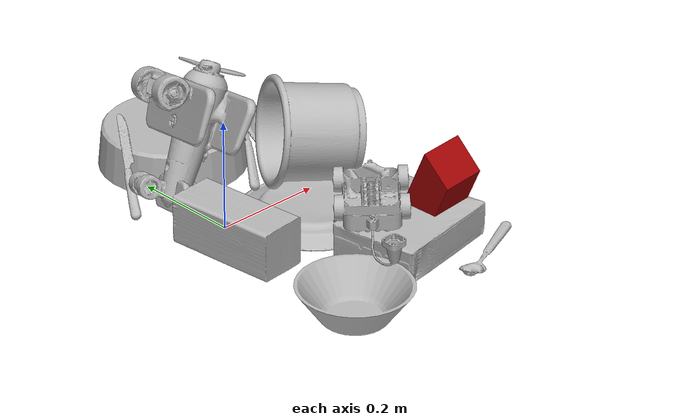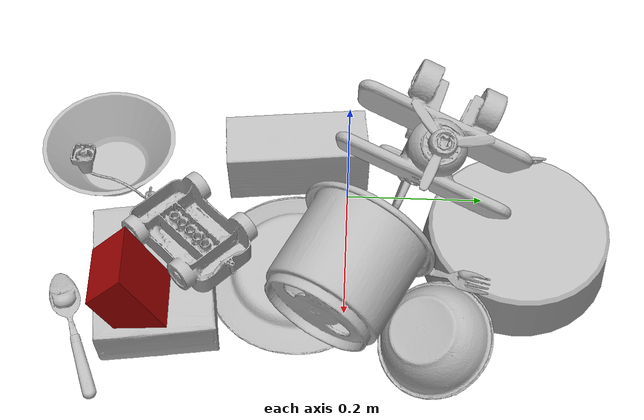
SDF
<sdf version="1.4">
  <world name="default">
    <light name="light1" type="point">
      <pose>0 0 1 0 0 0</pose>
      <diffuse>3 3 3 1</diffuse>
      <specular>3 3 3 1</specular>
    </light>
    <light name="light2" type="point">
      <pose>0 0.5 2 0 0 0</pose>
      <diffuse>1 1 1 1</diffuse>
      <specular>1 1 1 1</specular>
    </light>
    <light name="light3" type="point">
      <pose>0 0.5 2 0 0 0</pose>
      <diffuse>3 3 3 1</diffuse>
      <specular>3 3 3 1</specular>
    </light>
    <scene>
      <ambient>0.7 0.7 0.7</ambient>
    </scene>
    <model name="plate1">
      <link name="link_plate1">
        <collision name="default">
          <geometry>
            <mesh>
              <uri>model://plate/collision_meshes/collision.obj</uri>
              <scale>1.0 1.0 1.0</scale>
            </mesh>
          </geometry>
          <surface>
            <friction>
              <ode>
                <mu>0.5</mu>
                <mu2>0.5</mu2>
              </ode>
            </friction>
          <contact>
        <ode>
            <max_vel>0</max_vel>
            <min_depth>0.0001</min_depth>
            <kp>1e8</kp>
        </ode>
    </contact></surface>
        </collision>
        <visual name="default">
          <geometry>
            <mesh>
              <uri>model://plate/visual_meshes/visual.dae</uri>
              <scale>1.0 1.0 1.0</scale>
            </mesh>
          </geometry>
        </visual>
        <inertial>
          <mass>0.18013060092926025</mass>
          <pose>-0.0006044624606147408 0.0002782579977065325 -0.0010561981471255422 0.0022187543261248163 -0.003225499970721242 0.452618951787785</pose>
          <inertia>
            <ixx>0.00084265455</ixx>
            <iyy>0.000834595</iyy>
            <izz>0.0016481068</izz>
            <ixy>0</ixy>
            <ixz>0</ixz>
            <iyz>0</iyz>
          </inertia>
        </inertial>
      </link>
      <pose>0.1377573162317276 -0.0672813132405281 0.013932924717664719 3.1258097369568927 -0.007449469774596256 -2.115718948793599</pose>
    </model>
    <model name="plate2">
      <link name="link_plate2">
        <collision name="default">
          <geometry>
            <mesh>
              <uri>model://pan_tefal/collision_meshes/collision.obj</uri>
              <scale>1.0 1.0 1.0</scale>
            </mesh>
          </geometry>
          <surface>
            <friction>
              <ode>
                <mu>0.5</mu>
                <mu2>0.5</mu2>
              </ode>
            </friction>
          <contact>
        <ode>
            <max_vel>0</max_vel>
            <min_depth>0.0001</min_depth>
            <kp>1e8</kp>
        </ode>
    </contact></surface>
        </collision>
        <visual name="default">
          <geometry>
            <mesh>
              <uri>model://pan_tefal/visual_meshes/visual.dae</uri>
              <scale>1.0 1.0 1.0</scale>
            </mesh>
          </geometry>
        </visual>
        <inertial>
          <mass>1.1554980278015137</mass>
          <pose>-0.00018001958960667253 3.279018710600212e-05 -0.008514934219419956 0.0008190268412404128 -0.0003301434555644904 -0.33185316474518306</pose>
          <inertia>
            <ixx>0.007976347</ixx>
            <iyy>0.008027771</iyy>
            <izz>0.014682918</izz>
            <ixy>0</ixy>
            <ixz>0</ixz>
            <iyz>0</iyz>
          </inertia>
        </inertial>
      </link>
      <pose>0.09440792351961136 0.23896825313568115 0.03782225772738457 3.1415921398428477 -2.3816474240000096e-06 0.7791945965873567</pose>
    </model>
    <model name="bowl1">
      <link name="link_bowl1">
        <collision name="default">
          <geometry>
            <mesh>
              <uri>model://bowl/collision_meshes/collision.obj</uri>
              <scale>1.0 1.0 1.0</scale>
            </mesh>
          </geometry>
          <surface>
            <friction>
              <ode>
                <mu>0.5</mu>
                <mu2>0.5</mu2>
              </ode>
            </friction>
          <contact>
        <ode>
            <max_vel>0</max_vel>
            <min_depth>0.0001</min_depth>
            <kp>1e8</kp>
        </ode>
    </contact></surface>
        </collision>
        <visual name="default">
          <geometry>
            <mesh>
              <uri>model://bowl/visual_meshes/visual.dae</uri>
              <scale>1.0 1.0 1.0</scale>
            </mesh>
          </geometry>
        </visual>
        <inertial>
          <mass>0.08154366910457611</mass>
          <pose>0.0002044497523456812 -0.0010302083101123571 -0.0008042664267122746 -0.01576409235239578 0.014546819263349199 0.7140418673414882</pose>
          <inertia>
            <ixx>0.00018731231</ixx>
            <iyy>0.000183127</iyy>
            <izz>0.00031512365</izz>
            <ixy>0</ixy>
            <ixz>0</ixz>
            <iyz>0</iyz>
          </inertia>
        </inertial>
      </link>
      <pose>0.2615250051021576 0.11196448653936386 0.05923803895711899 -2.895696797517412 0.4007398164637057 -0.47011835792922246</pose>
    </model>
    <model name="bowl2">
      <link name="link_bowl2">
        <collision name="default">
          <geometry>
            <mesh>
              <uri>model://bowl_a/collision_meshes/collision.obj</uri>
              <scale>1.0 1.0 1.0</scale>
            </mesh>
          </geometry>
          <surface>
            <friction>
              <ode>
                <mu>0.5</mu>
                <mu2>0.5</mu2>
              </ode>
            </friction>
          <contact>
        <ode>
            <max_vel>0</max_vel>
            <min_depth>0.0001</min_depth>
            <kp>1e8</kp>
        </ode>
    </contact></surface>
        </collision>
        <visual name="default">
          <geometry>
            <mesh>
              <uri>model://bowl_a/visual_meshes/visual.dae</uri>
              <scale>1.0 1.0 1.0</scale>
            </mesh>
          </geometry>
        </visual>
        <inertial>
          <mass>0.4363987147808075</mass>
          <pose>0.0002786752884276211 4.73113359475974e-05 -0.0013765294570475817 -0.0009805318297205425 -0.0010938254473046036 -0.19123908587825994</pose>
          <inertia>
            <ixx>0.0012424473</ixx>
            <iyy>0.001250075</iyy>
            <izz>0.0022097398</izz>
            <ixy>0</ixy>
            <ixz>0</ixz>
            <iyz>0</iyz>
          </inertia>
        </inertial>
      </link>
      <pose>-0.04293172433972359 -0.35472720861434937 0.030382966622710228 -2.0422733386278544e-07 4.6154043487826195e-06 1.3660475537505519</pose>
    </model>
    <model name="silverware1">
      <link name="link_silverware1">
        <collision name="default">
          <geometry>
            <mesh>
              <uri>model://spoon/collision_meshes/collision.obj</uri>
              <scale>1.0 1.0 1.0</scale>
            </mesh>
          </geometry>
          <surface>
            <friction>
              <ode>
                <mu>0.5</mu>
                <mu2>0.5</mu2>
              </ode>
            </friction>
          <contact>
        <ode>
            <max_vel>0</max_vel>
            <min_depth>0.0001</min_depth>
            <kp>1e8</kp>
        </ode>
    </contact></surface>
        </collision>
        <visual name="default">
          <geometry>
            <mesh>
              <uri>model://spoon/visual_meshes/visual.dae</uri>
              <scale>1.0 1.0 1.0</scale>
            </mesh>
          </geometry>
        </visual>
        <inertial>
          <mass>0.034700214862823486</mass>
          <pose>-0.00552632100880146 -0.0016034168656915426 -0.0007271654903888702 0.03521477925438783 -0.03906582568380071 0.006150611591128785</pose>
          <inertia>
            <ixx>1.9300821e-06</ixx>
            <iyy>0.00013203312</iyy>
            <izz>0.00013298499</izz>
            <ixy>0</ixy>
            <ixz>0</ixz>
            <iyz>0</iyz>
          </inertia>
        </inertial>
      </link>
      <pose>0.253863126039505 -0.36797454953193665 0.008385265246033669 0.006731860611256009 0.026892982709804263 -2.7591480546616567</pose>
    </model>
    <model name="box1">
      <link name="link_box1">
        <collision name="default">
          <geometry>
            <mesh>
              <uri>model://cracker_box/collision_meshes/collision.obj</uri>
              <scale>1.0 1.0 1.0</scale>
            </mesh>
          </geometry>
          <surface>
            <friction>
              <ode>
                <mu>0.5</mu>
                <mu2>0.5</mu2>
              </ode>
            </friction>
          <contact>
        <ode>
            <max_vel>0</max_vel>
            <min_depth>0.0001</min_depth>
            <kp>1e8</kp>
        </ode>
    </contact></surface>
        </collision>
        <visual name="default">
          <geometry>
            <mesh>
              <uri>model://cracker_box/visual_meshes/visual.dae</uri>
              <scale>1.0 1.0 1.0</scale>
            </mesh>
          </geometry>
        </visual>
        <inertial>
          <mass>1.831273078918457</mass>
          <pose>0.000946414191275835 0.00025434247800149024 -0.0017029533628374338 -0.0003162074786093215 -0.01110648680647863 0.0025467950006863548</pose>
          <inertia>
            <ixx>0.0046579414</ixx>
            <iyy>0.0076911766</iyy>
            <izz>0.010976015</izz>
            <ixy>0</ixy>
            <ixz>0</ixz>
            <iyz>0</iyz>
          </inertia>
        </inertial>
      </link>
      <pose>0.1763046681880951 -0.26137834787368774 0.03553223982453346 3.137151836773405 -0.016554766398315667 0.15551177598453955</pose>
    </model>
    <model name="box2">
      <link name="link_box2">
        <collision name="default">
          <geometry>
            <mesh>
              <uri>model://wood_block/collision_meshes/collision.obj</uri>
              <scale>1.0 1.0 1.0</scale>
            </mesh>
          </geometry>
          <surface>
            <friction>
              <ode>
                <mu>0.5</mu>
                <mu2>0.5</mu2>
              </ode>
            </friction>
          <contact>
        <ode>
            <max_vel>0</max_vel>
            <min_depth>0.0001</min_depth>
            <kp>1e8</kp>
        </ode>
    </contact></surface>
        </collision>
        <visual name="default">
          <geometry>
            <mesh>
              <uri>model://wood_block/visual_meshes/visual.dae</uri>
              <scale>1.0 1.0 1.0</scale>
            </mesh>
          </geometry>
        </visual>
        <inertial>
          <mass>1.0038666725158691</mass>
          <pose>-5.813315510749817e-06 -0.000570809468626976 0.0002640858292579651 -0.05221020962952386 -0.005192696059900718 -0.006861377701075274</pose>
          <inertia>
            <ixx>0.0013433257</ixx>
            <iyy>0.0042435657</iyy>
            <izz>0.0042276927</izz>
            <ixy>0</ixy>
            <ixz>0</ixz>
            <iyz>0</iyz>
          </inertia>
        </inertial>
      </link>
      <pose>-0.042445022612810135 -0.07546605169773102 0.045591577887535095 3.1414317692062985 -0.005752664669625989 1.670034749157024</pose>
    </model>
    <model name="cup1">
      <link name="link_cup1">
        <collision name="default">
          <geometry>
            <mesh>
              <uri>model://i_cups/collision_meshes/collision.obj</uri>
              <scale>2.0 2.0 2.0</scale>
            </mesh>
          </geometry>
          <surface>
            <friction>
              <ode>
                <mu>0.5</mu>
                <mu2>0.5</mu2>
              </ode>
            </friction>
          <contact>
        <ode>
            <max_vel>0</max_vel>
            <min_depth>0.0001</min_depth>
            <kp>1e8</kp>
        </ode>
    </contact></surface>
        </collision>
        <visual name="default">
          <geometry>
            <mesh>
              <uri>model://i_cups/visual_meshes/visual.dae</uri>
              <scale>2.0 2.0 2.0</scale>
            </mesh>
          </geometry>
        </visual>
        <inertial>
          <mass>0.6038269996643066</mass>
          <pose>0.00022479970357380807 0.0003359453985467553 -0.001715799910016358 -0.02898255198870416 -0.03987340808103542 -0.3459203892901821</pose>
          <inertia>
            <ixx>0.0033440301</ixx>
            <iyy>0.003373493</iyy>
            <izz>0.0037374943</izz>
            <ixy>0</ixy>
            <ixz>0</ixz>
            <iyz>0</iyz>
          </inertia>
        </inertial>
      </link>
      <pose>0.20041263103485107 -0.0024191797710955143 0.11153033375740051 -1.4314463579007655 0.36058394011361494 1.1161632582233418</pose>
    </model>
    <model name="silverware2">
      <link name="link_silverware2">
        <collision name="default">
          <geometry>
            <mesh>
              <uri>model://knife/collision_meshes/collision.obj</uri>
              <scale>1.0 1.0 1.0</scale>
            </mesh>
          </geometry>
          <surface>
            <friction>
              <ode>
                <mu>0.5</mu>
                <mu2>0.5</mu2>
              </ode>
            </friction>
          <contact>
        <ode>
            <max_vel>0</max_vel>
            <min_depth>0.0001</min_depth>
            <kp>1e8</kp>
        </ode>
    </contact></surface>
        </collision>
        <visual name="default">
          <geometry>
            <mesh>
              <uri>model://knife/visual_meshes/visual.dae</uri>
              <scale>1.0 1.0 1.0</scale>
            </mesh>
          </geometry>
        </visual>
        <inertial>
          <mass>0.01351180113852024</mass>
          <pose>-0.023785246536135674 0.0015275131445378065 5.062015407020226e-05 0.073058244240525 0.017248418380522417 -0.007409818685807072</pose>
          <inertia>
            <ixx>3.8351965e-07</ixx>
            <iyy>5.1910156e-05</iyy>
            <izz>5.2033673e-05</izz>
            <ixy>0</ixy>
            <ixz>0</ixz>
            <iyz>0</iyz>
          </inertia>
        </inertial>
      </link>
      <pose>-0.04300197958946228 0.19647803902626038 0.05774923413991928 -0.43799093344774587 -0.52382685174451 1.005048076978569</pose>
    </model>
    <model name="silverware3">
      <link name="link_silverware3">
        <collision name="default">
          <geometry>
            <mesh>
              <uri>model://fork/collision_meshes/collision.obj</uri>
              <scale>1.0 1.0 1.0</scale>
            </mesh>
          </geometry>
          <surface>
            <friction>
              <ode>
                <mu>0.5</mu>
                <mu2>0.5</mu2>
              </ode>
            </friction>
          <contact>
        <ode>
            <max_vel>0</max_vel>
            <min_depth>0.0001</min_depth>
            <kp>1e8</kp>
        </ode>
    </contact></surface>
        </collision>
        <visual name="default">
          <geometry>
            <mesh>
              <uri>model://fork/visual_meshes/visual.dae</uri>
              <scale>1.0 1.0 1.0</scale>
            </mesh>
          </geometry>
        </visual>
        <inertial>
          <mass>0.030749449506402016</mass>
          <pose>-0.029570044949650764 0.0004658822435885668 0.00032188615296036005 -0.013551266353778695 -0.010977839115777554 0.014453902178384312</pose>
          <inertia>
            <ixx>1.0779423e-06</ixx>
            <iyy>8.0277954e-05</iyy>
            <izz>8.076011e-05</izz>
            <ixy>0</ixy>
            <ixz>0</ixz>
            <iyz>0</iyz>
          </inertia>
        </inertial>
      </link>
      <pose>0.16261601448059082 0.11889137327671051 0.056231990456581116 0.6899068822837929 -0.46401210805689486 0.9733933259470611</pose>
    </model>
    <model name="toy1">
      <link name="link_toy1">
        <collision name="default">
          <geometry>
            <mesh>
              <uri>model://e_toy_airplane/collision_meshes/collision.obj</uri>
              <scale>1.0 1.0 1.0</scale>
            </mesh>
          </geometry>
          <surface>
            <friction>
              <ode>
                <mu>0.5</mu>
                <mu2>0.5</mu2>
              </ode>
            </friction>
          <contact>
        <ode>
            <max_vel>0</max_vel>
            <min_depth>0.0001</min_depth>
            <kp>1e8</kp>
        </ode>
    </contact></surface>
        </collision>
        <visual name="default">
          <geometry>
            <mesh>
              <uri>model://e_toy_airplane/visual_meshes/visual.dae</uri>
              <scale>1.0 1.0 1.0</scale>
            </mesh>
          </geometry>
        </visual>
        <inertial>
          <mass>0.01770107075572014</mass>
          <pose>0.00011740486661437899 -2.248296732432209e-05 -0.011187206022441387 0.005518513464699853 0.009228302242376646 0.15041570361631973</pose>
          <inertia>
            <ixx>5.4025695e-06</ixx>
            <iyy>5.3473045e-06</iyy>
            <izz>1.6236847e-06</izz>
            <ixy>0</ixy>
            <ixz>0</ixz>
            <iyz>0</iyz>
          </inertia>
        </inertial>
      </link>
      <pose>0.019642598927021027 0.028410617262125015 0.012129750102758408 -1.8022881038424468 0.6721525753266687 2.208723009201253</pose>
    </model>
    <model name="toy2">
      <link name="link_toy2">
        <collision name="default">
          <geometry>
            <mesh>
              <uri>model://a_toy_airplane/collision_meshes/collision.obj</uri>
              <scale>1.0 1.0 1.0</scale>
            </mesh>
          </geometry>
          <surface>
            <friction>
              <ode>
                <mu>0.5</mu>
                <mu2>0.5</mu2>
              </ode>
            </friction>
          <contact>
        <ode>
            <max_vel>0</max_vel>
            <min_depth>0.0001</min_depth>
            <kp>1e8</kp>
        </ode>
    </contact></surface>
        </collision>
        <visual name="default">
          <geometry>
            <mesh>
              <uri>model://a_toy_airplane/visual_meshes/visual.dae</uri>
              <scale>1.0 1.0 1.0</scale>
            </mesh>
          </geometry>
        </visual>
        <inertial>
          <mass>1.6391528844833374</mass>
          <pose>0.02516508661210537 -0.003707319963723421 -0.0011962438002228737 -0.012016999892079352 -0.14663507149587088 0.004149061575203148</pose>
          <inertia>
            <ixx>0.0059525487</ixx>
            <iyy>0.008674072</iyy>
            <izz>0.01015627</izz>
            <ixy>0</ixy>
            <ixz>0</ixz>
            <iyz>0</iyz>
          </inertia>
        </inertial>
      </link>
      <pose>0.01630955934524536 0.1034427210688591 0.12862861156463623 2.2891039288706523 -1.19437384726049 0.5148413654238981</pose>
    </model>
    <model name="toy3">
      <link name="link_toy3">
        <collision name="default">
          <geometry>
            <mesh>
              <uri>model://g_lego_duplo/collision_meshes/collision.obj</uri>
              <scale>1.0 1.0 1.0</scale>
            </mesh>
          </geometry>
          <surface>
            <friction>
              <ode>
                <mu>0.5</mu>
                <mu2>0.5</mu2>
              </ode>
            </friction>
          <contact>
        <ode>
            <max_vel>0</max_vel>
            <min_depth>0.0001</min_depth>
            <kp>1e8</kp>
        </ode>
    </contact></surface>
        </collision>
        <visual name="default">
          <geometry>
            <mesh>
              <uri>model://g_lego_duplo/visual_meshes/visual.dae</uri>
              <scale>1.0 1.0 1.0</scale>
            </mesh>
          </geometry>
        </visual>
        <inertial>
          <mass>0.5092288255691528</mass>
          <pose>-0.05004768446087837 0.0017554641235619783 0.0038806775119155645 0.010963010010498962 0.03810823590924119 -0.09653024292159736</pose>
          <inertia>
            <ixx>0.00073787844</ixx>
            <iyy>0.002230844</iyy>
            <izz>0.002790868</izz>
            <ixy>0</ixy>
            <ixz>0</ixz>
            <iyz>0</iyz>
          </inertia>
        </inertial>
      </link>
      <pose>0.09731853008270264 -0.2583597004413605 0.09387510269880295 -3.1109009884057657 0.007484191290097026 -2.3269949490329984</pose>
    </model>
    <model name="toy4">
      <link name="link_toy4">
        <collision name="default">
          <geometry>
            <mesh>
              <uri>model://a_lego_duplo/collision_meshes/collision.obj</uri>
              <scale>1.0 1.0 1.0</scale>
            </mesh>
          </geometry>
          <surface>
            <friction>
              <ode>
                <mu>0.5</mu>
                <mu2>0.5</mu2>
              </ode>
            </friction>
          <contact>
        <ode>
            <max_vel>0</max_vel>
            <min_depth>0.0001</min_depth>
            <kp>1e8</kp>
        </ode>
    </contact></surface>
        </collision>
        <visual name="default">
          <geometry>
            <mesh>
              <uri>model://a_lego_duplo/visual_meshes/visual.dae</uri>
              <scale>1.0 1.0 1.0</scale>
            </mesh>
          </geometry>
        </visual>
        <inertial>
          <mass>0.03161923587322235</mass>
          <pose>-0.00011337598698446527 0.00018517524586059153 0.00036926084430888295 -0.014116977368405541 -0.00012565500284871778 6.143069663272407e-05</pose>
          <inertia>
            <ixx>4.0538393e-06</ixx>
            <iyy>9.081488e-06</iyy>
            <izz>1.1249442e-05</izz>
            <ixy>0</ixy>
            <ixz>0</ixz>
            <iyz>0</iyz>
          </inertia>
        </inertial>
      </link>
      <pose>0.12927061319351196 -0.16561062633991241 0.030295226722955704 -2.395977609482237 -0.021609918272622246 0.15124048204980517</pose>
    </model>
    <model name="toy5">
      <link name="link_toy5">
        <collision name="default">
          <geometry>
            <mesh>
              <uri>model://prism/collision_meshes/collision.obj</uri>
              <scale>1.0 1.0 1.0</scale>
            </mesh>
          </geometry>
          <surface>
            <friction>
              <ode>
                <mu>0.5</mu>
                <mu2>0.5</mu2>
              </ode>
            </friction>
          <contact>
        <ode>
            <max_vel>0</max_vel>
            <min_depth>0.0001</min_depth>
            <kp>1e8</kp>
        </ode>
    </contact></surface>
        </collision>
        <visual name="default">
          <geometry>
            <mesh>
              <uri>model://prism/visual_meshes/visual.dae</uri>
              <scale>1.0 1.0 1.0</scale>
            </mesh>
          </geometry>
        </visual>
        <inertial>
          <mass>0.5650969743728638</mass>
          <pose>-9.85359656624496e-05 -4.96157269935793e-07 -0.0033869100734591484 0.0 0.006559179369129768 0.0</pose>
          <inertia>
            <ixx>0.00050999306</ixx>
            <iyy>0.00061633316</iyy>
            <izz>0.00075493456</izz>
            <ixy>0</ixy>
            <ixz>0</ixz>
            <iyz>0</iyz>
          </inertia>
        </inertial>
      </link>
      <pose>0.23180778324604034 -0.2848779261112213 0.11567344516515732 3.0620043098279366 1.1666642940108496 1.5516637808891554</pose>
    </model>
  <physics type="ode">
      <max_contacts>50</max_contacts>
      <ode>
        <solver>
          <type>quick</type>
          <iters>75</iters>
        </solver>
        <constraints>
          <contact_max_correcting_vel>0</contact_max_correcting_vel>
          <contact_surface_layer>0</contact_surface_layer>
        </constraints>
      </ode>
    </physics></world>
</sdf>
